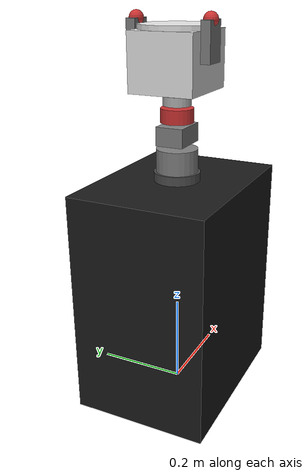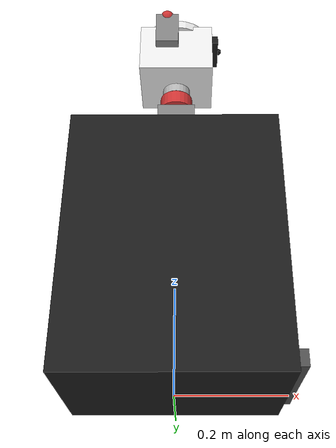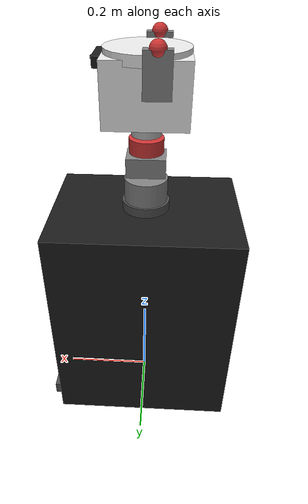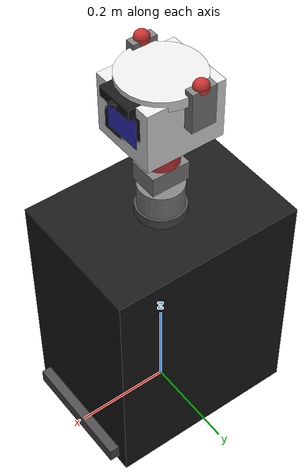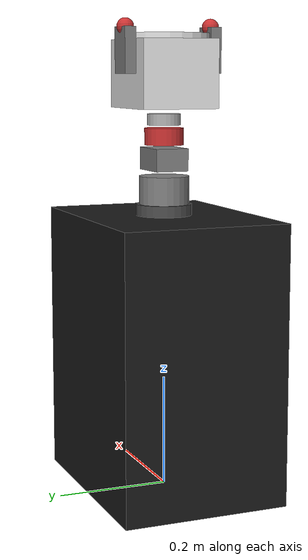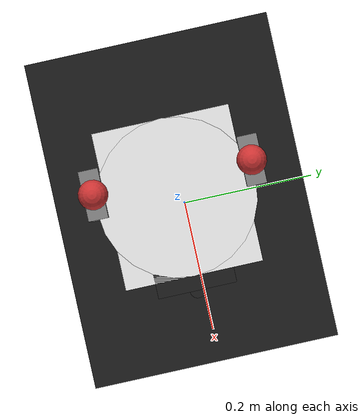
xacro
<?xml version="1.0"?>
<robot xmlns:xacro="http://www.ros.org/wiki/xacro" name="coffee_robot">

  <!-- Include all sub-assemblies -->
  <xacro:include filename="$(find coffee_robot_description)/urdf/coffee_machine_base.urdf.xacro"/>
  <xacro:include filename="$(find coffee_robot_description)/urdf/neck_assembly.urdf.xacro"/>
  <xacro:include filename="$(find coffee_robot_description)/urdf/robot_head.urdf.xacro"/>
  <xacro:include filename="$(find coffee_robot_description)/urdf/sensors.urdf.xacro"/>

  <!-- Robot Parameters -->
  <xacro:property name="base_width" value="0.30"/>
  <xacro:property name="base_length" value="0.40"/>
  <xacro:property name="base_height" value="0.50"/>
  <!-- Note: pi is provided globally by xacro -->

  <!-- Material Definitions -->
  <material name="white">
    <color rgba="0.9 0.9 0.9 1.0"/>
  </material>

  <material name="black">
    <color rgba="0.1 0.1 0.1 1.0"/>
  </material>

  <material name="gray">
    <color rgba="0.5 0.5 0.5 1.0"/>
  </material>

  <material name="dark_gray">
    <color rgba="0.3 0.3 0.3 1.0"/>
  </material>

  <material name="red">
    <color rgba="0.8 0.2 0.2 1.0"/>
  </material>

  <material name="blue">
    <color rgba="0.2 0.2 0.8 1.0"/>
  </material>

  <material name="silver">
    <color rgba="0.7 0.7 0.7 1.0"/>
  </material>

  <!-- World/Base Link -->
  <link name="world"/>

  <!-- Coffee machine base assembly -->
  <xacro:coffee_machine_base parent="world" xyz="0 0 0"/>

  <!-- 3DOF Neck assembly (connects to base_link) -->
  <xacro:neck_assembly parent="base_link" xyz="0 0 ${base_height}"/>

  <!-- Robot head assembly (connects to neck) -->
  <xacro:robot_head parent="neck_roll_link" xyz="0 0 0.05"/>

  <!-- Sensors (camera, etc.) -->
  <xacro:robot_sensors parent="head_link"/>

</robot>

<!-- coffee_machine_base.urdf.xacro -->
<robot xmlns:xacro="http://www.ros.org/wiki/xacro">

  <!-- Coffee Machine Base Assembly -->
  <xacro:macro name="coffee_machine_base" params="parent xyz">

    <!-- Base link (main coffee machine body) -->
    <joint name="base_joint" type="fixed">
      <parent link="${parent}"/>
      <child link="base_link"/>
      <origin xyz="${xyz}" rpy="0 0 0"/>
    </joint>

    <link name="base_link">
      <visual>
        <geometry>
          <box size="0.40 0.30 0.50"/>
        </geometry>
        <origin xyz="0 0 0.25" rpy="0 0 0"/>
        <material name="black"/>
      </visual>
      <collision>
        <geometry>
          <box size="0.40 0.30 0.50"/>
        </geometry>
        <origin xyz="0 0 0.25" rpy="0 0 0"/>
      </collision>
      <inertial>
        <mass value="15.0"/>  <!-- Heavy coffee machine -->
        <origin xyz="0 0 0.25" rpy="0 0 0"/>
        <inertia ixx="1.25" iyy="1.0" izz="0.625" ixy="0" ixz="0" iyz="0"/>
      </inertial>
    </link>

    <!-- Water Tank (removable) -->
    <joint name="water_tank_joint" type="fixed">
      <parent link="base_link"/>
      <child link="water_tank_link"/>
      <origin xyz="-0.15 0 0.35" rpy="0 0 0"/>
    </joint>

    <link name="water_tank_link">
      <visual>
        <geometry>
          <box size="0.08 0.20 0.25"/>
        </geometry>
        <material name="blue"/>
      </visual>
      <collision>
        <geometry>
          <box size="0.08 0.20 0.25"/>
        </geometry>
      </collision>
      <inertial>
        <mass value="0.5"/>
        <inertia ixx="0.01" iyy="0.01" izz="0.01" ixy="0" ixz="0" iyz="0"/>
      </inertial>
    </link>

    <!-- Coffee Cup Platform -->
    <joint name="cup_platform_joint" type="fixed">
      <parent link="base_link"/>
      <child link="cup_platform_link"/>
      <origin xyz="0.12 0 0.08" rpy="0 0 0"/>
    </joint>

    <link name="cup_platform_link">
      <visual>
        <geometry>
          <box size="0.15 0.15 0.02"/>
        </geometry>
        <material name="silver"/>
      </visual>
      <collision>
        <geometry>
          <box size="0.15 0.15 0.02"/>
        </geometry>
      </collision>
      <inertial>
        <mass value="0.2"/>
        <inertia ixx="0.001" iyy="0.001" izz="0.001" ixy="0" ixz="0" iyz="0"/>
      </inertial>
    </link>

    <!-- Drip Tray -->
    <joint name="drip_tray_joint" type="fixed">
      <parent link="base_link"/>
      <child link="drip_tray_link"/>
      <origin xyz="0.12 0 0.03" rpy="0 0 0"/>
    </joint>

    <link name="drip_tray_link">
      <visual>
        <geometry>
          <box size="0.20 0.25 0.03"/>
        </geometry>
        <material name="dark_gray"/>
      </visual>
      <collision>
        <geometry>
          <box size="0.20 0.25 0.03"/>
        </geometry>
      </collision>
      <inertial>
        <mass value="0.3"/>
        <inertia ixx="0.002" iyy="0.002" izz="0.002" ixy="0" ixz="0" iyz="0"/>
      </inertial>
    </link>

    <!-- Coffee Outlet Spout -->
    <joint name="coffee_spout_joint" type="fixed">
      <parent link="base_link"/>
      <child link="coffee_spout_link"/>
      <origin xyz="0.08 0 0.20" rpy="0 0 0"/>
    </joint>

    <link name="coffee_spout_link">
      <visual>
        <geometry>
          <cylinder radius="0.015" length="0.08"/>
        </geometry>
        <origin xyz="0 0 0" rpy="0 1.57 0"/>
        <material name="silver"/>
      </visual>
      <collision>
        <geometry>
          <cylinder radius="0.015" length="0.08"/>
        </geometry>
        <origin xyz="0 0 0" rpy="0 1.57 0"/>
      </collision>
      <inertial>
        <mass value="0.1"/>
        <inertia ixx="0.0001" iyy="0.0001" izz="0.0001" ixy="0" ixz="0" iyz="0"/>
      </inertial>
    </link>

    <!-- Control Panel -->
    <joint name="control_panel_joint" type="fixed">
      <parent link="base_link"/>
      <child link="control_panel_link"/>
      <origin xyz="-0.05 0 0.45" rpy="0 0.2 0"/>
    </joint>

    <link name="control_panel_link">
      <visual>
        <geometry>
          <box size="0.08 0.15 0.08"/>
        </geometry>
        <material name="dark_gray"/>
      </visual>
      <collision>
        <geometry>
          <box size="0.08 0.15 0.08"/>
        </geometry>
      </collision>
      <inertial>
        <mass value="0.2"/>
        <inertia ixx="0.001" iyy="0.001" izz="0.001" ixy="0" ixz="0" iyz="0"/>
      </inertial>
    </link>

  </xacro:macro>

</robot>

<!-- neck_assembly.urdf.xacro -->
<robot xmlns:xacro="http://www.ros.org/wiki/xacro">

  <!-- 3DOF Neck Assembly -->
  <xacro:macro name="neck_assembly" params="parent xyz">

    <!-- Properties based on current hardware -->
    <!-- Pan Motor ID:1 limits: 143° to 210° (center: 180°) = -37° to +30° from center -->
    <!-- Tilt Motor ID:9 limits: 169° to 206° (center: 180°) = -11° to +26° from center -->
    <xacro:property name="pan_min_angle" value="${-37*pi/180}"/>  <!-- -37 degrees -->
    <xacro:property name="pan_max_angle" value="${30*pi/180}"/>   <!-- +30 degrees -->
    <xacro:property name="tilt_min_angle" value="${-11*pi/180}"/>  <!-- -11 degrees (up) -->
    <xacro:property name="tilt_max_angle" value="${26*pi/180}"/>   <!-- +26 degrees (down) -->
    <xacro:property name="roll_min_angle" value="${-30*pi/180}"/>  <!-- Future roll motor -->
    <xacro:property name="roll_max_angle" value="${30*pi/180}"/>   <!-- Future roll motor -->

    <!-- Neck Base Mount (fixed to coffee machine base) -->
    <joint name="neck_mount_joint" type="fixed">
      <parent link="${parent}"/>
      <child link="neck_mount_link"/>
      <origin xyz="${xyz}" rpy="0 0 0"/>
    </joint>

    <link name="neck_mount_link">
      <visual>
        <geometry>
          <cylinder radius="0.05" length="0.04"/>
        </geometry>
        <material name="dark_gray"/>
      </visual>
      <collision>
        <geometry>
          <cylinder radius="0.05" length="0.04"/>
        </geometry>
      </collision>
      <inertial>
        <mass value="0.3"/>
        <inertia ixx="0.001" iyy="0.001" izz="0.002" ixy="0" ixz="0" iyz="0"/>
      </inertial>
    </link>

    <!-- Yaw Joint (Pan Motor - Dynamixel ID:1) -->
    <joint name="neck_yaw_joint" type="revolute">
      <parent link="neck_mount_link"/>
      <child link="neck_yaw_link"/>
      <origin xyz="0 0 0.04" rpy="0 0 0"/>
      <axis xyz="0 0 1"/>
      <limit lower="${pan_min_angle}" upper="${pan_max_angle}" effort="10.0" velocity="1.5"/>
      <dynamics damping="0.1" friction="0.1"/>
    </joint>

    <link name="neck_yaw_link">
      <visual>
        <geometry>
          <cylinder radius="0.045" length="0.06"/>
        </geometry>
        <material name="gray"/>
      </visual>
      <collision>
        <geometry>
          <cylinder radius="0.045" length="0.06"/>
        </geometry>
      </collision>
      <inertial>
        <mass value="0.4"/>  <!-- XM540-W270 motor weight -->
        <inertia ixx="0.002" iyy="0.002" izz="0.001" ixy="0" ixz="0" iyz="0"/>
      </inertial>
    </link>

    <!-- Pitch Joint (Tilt Motor - Dynamixel ID:9) -->
    <joint name="neck_pitch_joint" type="revolute">
      <parent link="neck_yaw_link"/>
      <child link="neck_pitch_link"/>
      <origin xyz="0 0 0.06" rpy="0 0 0"/>
      <axis xyz="0 1 0"/>
      <limit lower="${tilt_min_angle}" upper="${tilt_max_angle}" effort="10.0" velocity="1.5"/>
      <dynamics damping="0.1" friction="0.1"/>
    </joint>

    <link name="neck_pitch_link">
      <visual>
        <geometry>
          <box size="0.08 0.06 0.04"/>
        </geometry>
        <material name="gray"/>
      </visual>
      <collision>
        <geometry>
          <box size="0.08 0.06 0.04"/>
        </geometry>
      </collision>
      <inertial>
        <mass value="0.4"/>  <!-- XM540-W270 motor weight -->
        <inertia ixx="0.002" iyy="0.001" izz="0.002" ixy="0" ixz="0" iyz="0"/>
      </inertial>
    </link>

    <!-- Roll Joint (Future motor - placeholder for 3rd DOF) -->
    <joint name="neck_roll_joint" type="revolute">
      <parent link="neck_pitch_link"/>
      <child link="neck_roll_link"/>
      <origin xyz="0 0 0.04" rpy="0 0 0"/>
      <axis xyz="1 0 0"/>
      <limit lower="${roll_min_angle}" upper="${roll_max_angle}" effort="5.0" velocity="2.0"/>
      <dynamics damping="0.05" friction="0.05"/>
    </joint>

    <link name="neck_roll_link">
      <visual>
        <geometry>
          <cylinder radius="0.035" length="0.03"/>
        </geometry>
        <material name="red"/>  <!-- Red to indicate future hardware -->
      </visual>
      <collision>
        <geometry>
          <cylinder radius="0.035" length="0.03"/>
        </geometry>
      </collision>
      <inertial>
        <mass value="0.2"/>  <!-- Smaller motor for roll -->
        <inertia ixx="0.0005" iyy="0.001" izz="0.001" ixy="0" ixz="0" iyz="0"/>
      </inertial>
    </link>

    <!-- Head Connection Point -->
    <joint name="head_connection_joint" type="fixed">
      <parent link="neck_roll_link"/>
      <child link="head_connection_link"/>
      <origin xyz="0 0 0.03" rpy="0 0 0"/>
    </joint>

    <link name="head_connection_link">
      <visual>
        <geometry>
          <cylinder radius="0.03" length="0.02"/>
        </geometry>
        <material name="silver"/>
      </visual>
      <collision>
        <geometry>
          <cylinder radius="0.03" length="0.02"/>
        </geometry>
      </collision>
      <inertial>
        <mass value="0.1"/>
        <inertia ixx="0.0001" iyy="0.0001" izz="0.0001" ixy="0" ixz="0" iyz="0"/>
      </inertial>
    </link>

  </xacro:macro>

</robot>

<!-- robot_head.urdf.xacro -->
<robot xmlns:xacro="http://www.ros.org/wiki/xacro">

  <!-- Robot Head Assembly -->
  <xacro:macro name="robot_head" params="parent xyz">

    <!-- Head Main Body -->
    <joint name="head_joint" type="fixed">
      <parent link="${parent}"/>
      <child link="head_link"/>
      <origin xyz="${xyz}" rpy="0 0 0"/>
    </joint>

    <link name="head_link">
      <visual>
        <geometry>
          <box size="0.16 0.14 0.12"/>
        </geometry>
        <origin xyz="0 0 0.06" rpy="0 0 0"/>
        <material name="white"/>
      </visual>
      <collision>
        <geometry>
          <box size="0.16 0.14 0.12"/>
        </geometry>
        <origin xyz="0 0 0.06" rpy="0 0 0"/>
      </collision>
      <inertial>
        <mass value="1.2"/>  <!-- Head with display and components -->
        <origin xyz="0 0 0.06" rpy="0 0 0"/>
        <inertia ixx="0.02" iyy="0.02" izz="0.015" ixy="0" ixz="0" iyz="0"/>
      </inertial>
    </link>

    <!-- LCD Display (in the middle of the head) -->
    <joint name="display_joint" type="fixed">
      <parent link="head_link"/>
      <child link="display_link"/>
      <origin xyz="0.07 0 0.06" rpy="0 0 0"/>
    </joint>

    <link name="display_link">
      <visual>
        <geometry>
          <box size="0.02 0.10 0.08"/>
        </geometry>
        <material name="black"/>
      </visual>
      <collision>
        <geometry>
          <box size="0.02 0.10 0.08"/>
        </geometry>
      </collision>
      <inertial>
        <mass value="0.15"/>
        <inertia ixx="0.0001" iyy="0.0001" izz="0.0001" ixy="0" ixz="0" iyz="0"/>
      </inertial>
    </link>

    <!-- Display Screen Surface -->
    <joint name="screen_joint" type="fixed">
      <parent link="display_link"/>
      <child link="screen_link"/>
      <origin xyz="0.01 0 0" rpy="0 0 0"/>
    </joint>

    <link name="screen_link">
      <visual>
        <geometry>
          <box size="0.001 0.08 0.06"/>
        </geometry>
        <material name="blue"/>  <!-- Blue screen for eyes -->
      </visual>
      <inertial>
        <mass value="0.01"/>
        <inertia ixx="0.00001" iyy="0.00001" izz="0.00001" ixy="0" ixz="0" iyz="0"/>
      </inertial>
    </link>

    <!-- Logitech Brio Camera Mount (at the top of LCD display - forehead position) -->
    <joint name="camera_mount_joint" type="fixed">
      <parent link="display_link"/>
      <child link="camera_mount_link"/>
      <origin xyz="0.01 0 0.05" rpy="0 0 0"/>
    </joint>

    <link name="camera_mount_link">
      <visual>
        <geometry>
          <box size="0.03 0.08 0.02"/>
        </geometry>
        <material name="black"/>
      </visual>
      <collision>
        <geometry>
          <box size="0.03 0.08 0.02"/>
        </geometry>
      </collision>
      <inertial>
        <mass value="0.08"/>  <!-- Logitech Brio weight ~63g -->
        <inertia ixx="0.0001" iyy="0.0001" izz="0.0001" ixy="0" ixz="0" iyz="0"/>
      </inertial>
    </link>

    <!-- Camera Lens -->
    <joint name="camera_lens_joint" type="fixed">
      <parent link="camera_mount_link"/>
      <child link="camera_lens_link"/>
      <origin xyz="0.015 0 0" rpy="0 0 0"/>
    </joint>

    <link name="camera_lens_link">
      <visual>
        <geometry>
          <cylinder radius="0.008" length="0.005"/>
        </geometry>
        <material name="black"/>
      </visual>
      <collision>
        <geometry>
          <cylinder radius="0.008" length="0.005"/>
        </geometry>
      </collision>
      <inertial>
        <mass value="0.005"/>
        <inertia ixx="0.000001" iyy="0.000001" izz="0.000001" ixy="0" ixz="0" iyz="0"/>
      </inertial>
    </link>

    <!-- Left Ear Assembly (movable left to right) -->
    <joint name="left_ear_joint" type="revolute">
      <parent link="head_link"/>
      <child link="left_ear_link"/>
      <origin xyz="-0.02 0.08 0.10" rpy="0 0 0"/>
      <axis xyz="0 0 1"/>  <!-- Rotate around Z-axis (left-right movement) -->
      <limit lower="${-45*pi/180}" upper="${45*pi/180}" effort="2.0" velocity="3.0"/>
      <dynamics damping="0.02" friction="0.02"/>
    </joint>

    <link name="left_ear_link">
      <visual>
        <geometry>
          <box size="0.05 0.02 0.08"/>
        </geometry>
        <origin xyz="0 0 0" rpy="0 0 0"/>
        <material name="gray"/>
      </visual>
      <collision>
        <geometry>
          <box size="0.05 0.02 0.08"/>
        </geometry>
        <origin xyz="0 0 0" rpy="0 0 0"/>
      </collision>
      <inertial>
        <mass value="0.08"/>  <!-- Light ear assembly -->
        <inertia ixx="0.0001" iyy="0.0001" izz="0.0001" ixy="0" ixz="0" iyz="0"/>
      </inertial>
    </link>

    <!-- Left Ear Tip (decorative) -->
    <joint name="left_ear_tip_joint" type="fixed">
      <parent link="left_ear_link"/>
      <child link="left_ear_tip_link"/>
      <origin xyz="0 0 0.04" rpy="0 0 0"/>
    </joint>

    <link name="left_ear_tip_link">
      <visual>
        <geometry>
          <sphere radius="0.015"/>
        </geometry>
        <material name="red"/>
      </visual>
      <inertial>
        <mass value="0.01"/>
        <inertia ixx="0.00001" iyy="0.00001" izz="0.00001" ixy="0" ixz="0" iyz="0"/>
      </inertial>
    </link>

    <!-- Right Ear Assembly (movable left to right) -->
    <joint name="right_ear_joint" type="revolute">
      <parent link="head_link"/>
      <child link="right_ear_link"/>
      <origin xyz="-0.02 -0.08 0.10" rpy="0 0 0"/>
      <axis xyz="0 0 1"/>  <!-- Rotate around Z-axis (left-right movement) -->
      <limit lower="${-45*pi/180}" upper="${45*pi/180}" effort="2.0" velocity="3.0"/>
      <dynamics damping="0.02" friction="0.02"/>
    </joint>

    <link name="right_ear_link">
      <visual>
        <geometry>
          <box size="0.05 0.02 0.08"/>
        </geometry>
        <origin xyz="0 0 0" rpy="0 0 0"/>
        <material name="gray"/>
      </visual>
      <collision>
        <geometry>
          <box size="0.05 0.02 0.08"/>
        </geometry>
        <origin xyz="0 0 0" rpy="0 0 0"/>
      </collision>
      <inertial>
        <mass value="0.08"/>  <!-- Light ear assembly -->
        <inertia ixx="0.0001" iyy="0.0001" izz="0.0001" ixy="0" ixz="0" iyz="0"/>
      </inertial>
    </link>

    <!-- Right Ear Tip (decorative) -->
    <joint name="right_ear_tip_joint" type="fixed">
      <parent link="right_ear_link"/>
      <child link="right_ear_tip_link"/>
      <origin xyz="0 0 0.04" rpy="0 0 0"/>
    </joint>

    <link name="right_ear_tip_link">
      <visual>
        <geometry>
          <sphere radius="0.015"/>
        </geometry>
        <material name="red"/>
      </visual>
      <inertial>
        <mass value="0.01"/>
        <inertia ixx="0.00001" iyy="0.00001" izz="0.00001" ixy="0" ixz="0" iyz="0"/>
      </inertial>
    </link>

    <!-- Head Top Cover -->
    <joint name="head_top_joint" type="fixed">
      <parent link="head_link"/>
      <child link="head_top_link"/>
      <origin xyz="0 0 0.12" rpy="0 0 0"/>
    </joint>

    <link name="head_top_link">
      <visual>
        <geometry>
          <cylinder radius="0.08" length="0.02"/>
        </geometry>
        <material name="white"/>
      </visual>
      <collision>
        <geometry>
          <cylinder radius="0.08" length="0.02"/>
        </geometry>
      </collision>
      <inertial>
        <mass value="0.1"/>
        <inertia ixx="0.0001" iyy="0.0001" izz="0.0001" ixy="0" ixz="0" iyz="0"/>
      </inertial>
    </link>

  </xacro:macro>

</robot>

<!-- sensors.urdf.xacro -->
<robot xmlns:xacro="http://www.ros.org/wiki/xacro">

  <!-- Robot Sensors -->
  <xacro:macro name="robot_sensors" params="parent">

    <!-- Camera Frame (for ROS camera topics) -->
    <joint name="camera_optical_joint" type="fixed">
      <parent link="camera_lens_link"/>
      <child link="camera_optical_frame"/>
      <!-- Standard camera optical frame: X forward, Y left, Z up -->
      <origin xyz="0 0 0" rpy="${-pi/2} 0 ${-pi/2}"/>
    </joint>

    <link name="camera_optical_frame">
      <!-- Optical frame has no visual/collision geometry -->
      <inertial>
        <mass value="0.001"/>
        <inertia ixx="0.000001" iyy="0.000001" izz="0.000001" ixy="0" ixz="0" iyz="0"/>
      </inertial>
    </link>

    <!-- RGB Camera Frame (for color image) -->
    <joint name="camera_rgb_frame_joint" type="fixed">
      <parent link="camera_optical_frame"/>
      <child link="camera_rgb_frame"/>
      <origin xyz="0 0 0" rpy="0 0 0"/>
    </joint>

    <link name="camera_rgb_frame">
      <inertial>
        <mass value="0.001"/>
        <inertia ixx="0.000001" iyy="0.000001" izz="0.000001" ixy="0" ixz="0" iyz="0"/>
      </inertial>
    </link>

    <!-- Depth Camera Frame (for depth image) -->
    <joint name="camera_depth_frame_joint" type="fixed">
      <parent link="camera_optical_frame"/>
      <child link="camera_depth_frame"/>
      <origin xyz="0 0 0" rpy="0 0 0"/>
    </joint>

    <link name="camera_depth_frame">
      <inertial>
        <mass value="0.001"/>
        <inertia ixx="0.000001" iyy="0.000001" izz="0.000001" ixy="0" ixz="0" iyz="0"/>
      </inertial>
    </link>

    <!-- IMU Sensor (future sensor) -->
    <joint name="imu_joint" type="fixed">
      <parent link="${parent}"/>
      <child link="imu_link"/>
      <origin xyz="-0.02 0 0.08" rpy="0 0 0"/>
    </joint>

    <link name="imu_link">
      <visual>
        <geometry>
          <box size="0.01 0.01 0.005"/>
        </geometry>
        <material name="red"/>
      </visual>
      <inertial>
        <mass value="0.002"/>
        <inertia ixx="0.000001" iyy="0.000001" izz="0.000001" ixy="0" ixz="0" iyz="0"/>
      </inertial>
    </link>

    <!-- Gazebo Camera Plugin (for simulation) -->
    <gazebo reference="camera_lens_link">
      <sensor type="camera" name="head_camera">
        <update_rate>30.0</update_rate>
        <camera name="head">
          <horizontal_fov>1.3962634</horizontal_fov> <!-- 80 degrees -->
          <image>
            <width>1920</width>  <!-- Logitech Brio 4K capability -->
            <height>1080</height>
            <format>R8G8B8</format>
          </image>
          <clip>
            <near>0.02</near>
            <far>300</far>
          </clip>
          <noise>
            <type>gaussian</type>
            <mean>0.0</mean>
            <stddev>0.007</stddev>
          </noise>
        </camera>
        <plugin name="camera_controller" filename="libgazebo_ros_camera.so">
          <alwaysOn>true</alwaysOn>
          <updateRate>0.0</updateRate>
          <cameraName>head_camera</cameraName>
          <imageTopicName>image_raw</imageTopicName>
          <cameraInfoTopicName>camera_info</cameraInfoTopicName>
          <frameName>camera_optical_frame</frameName>
          <hackBaseline>0.07</hackBaseline>
          <distortionK1>0.0</distortionK1>
          <distortionK2>0.0</distortionK2>
          <distortionK3>0.0</distortionK3>
          <distortionT1>0.0</distortionT1>
          <distortionT2>0.0</distortionT2>
        </plugin>
      </sensor>
    </gazebo>

    <!-- Gazebo IMU Plugin (for simulation) -->
    <gazebo reference="imu_link">
      <sensor name="imu_sensor" type="imu">
        <plugin filename="libgazebo_ros_imu_sensor.so" name="imu_plugin">
          <ros>
            <namespace>/</namespace>
            <remapping>~/out:=imu</remapping>
          </ros>
          <initial_orientation_as_reference>false</initial_orientation_as_reference>
        </plugin>
        <always_on>true</always_on>
        <update_rate>100</update_rate>
        <visualize>true</visualize>
        <imu>
          <angular_velocity>
            <x>
              <noise type="gaussian">
                <mean>0.0</mean>
                <stddev>2e-4</stddev>
                <bias_mean>0.0000075</bias_mean>
                <bias_stddev>0.0000008</bias_stddev>
              </noise>
            </x>
            <y>
              <noise type="gaussian">
                <mean>0.0</mean>
                <stddev>2e-4</stddev>
                <bias_mean>0.0000075</bias_mean>
                <bias_stddev>0.0000008</bias_stddev>
              </noise>
            </y>
            <z>
              <noise type="gaussian">
                <mean>0.0</mean>
                <stddev>2e-4</stddev>
                <bias_mean>0.0000075</bias_mean>
                <bias_stddev>0.0000008</bias_stddev>
              </noise>
            </z>
          </angular_velocity>
          <linear_acceleration>
            <x>
              <noise type="gaussian">
                <mean>0.0</mean>
                <stddev>1.7e-2</stddev>
                <bias_mean>0.1</bias_mean>
                <bias_stddev>0.001</bias_stddev>
              </noise>
            </x>
            <y>
              <noise type="gaussian">
                <mean>0.0</mean>
                <stddev>1.7e-2</stddev>
                <bias_mean>0.1</bias_mean>
                <bias_stddev>0.001</bias_stddev>
              </noise>
            </y>
            <z>
              <noise type="gaussian">
                <mean>0.0</mean>
                <stddev>1.7e-2</stddev>
                <bias_mean>0.1</bias_mean>
                <bias_stddev>0.001</bias_stddev>
              </noise>
            </z>
          </linear_acceleration>
        </imu>
      </sensor>
    </gazebo>

  </xacro:macro>

</robot>
